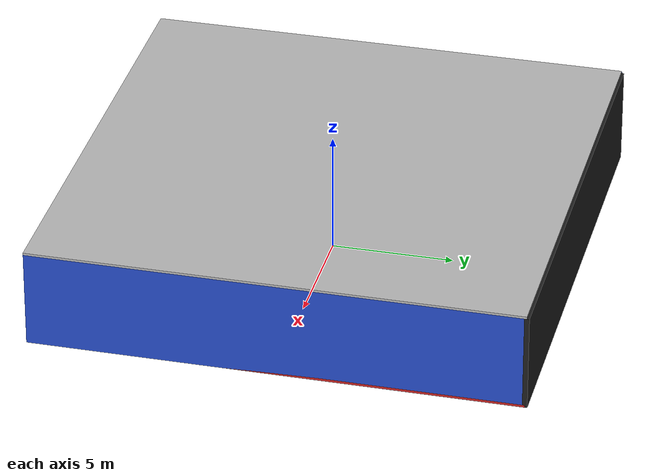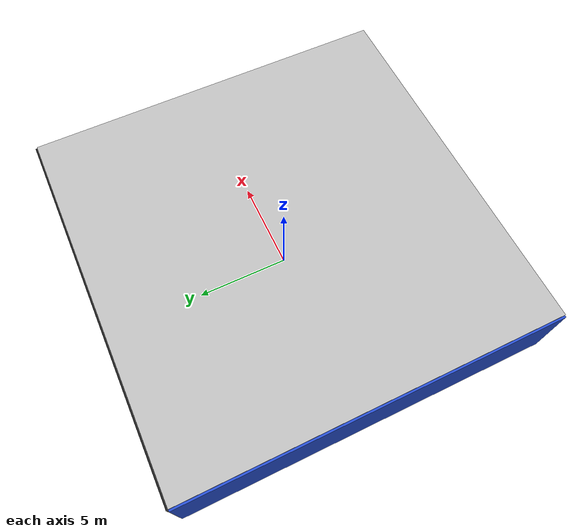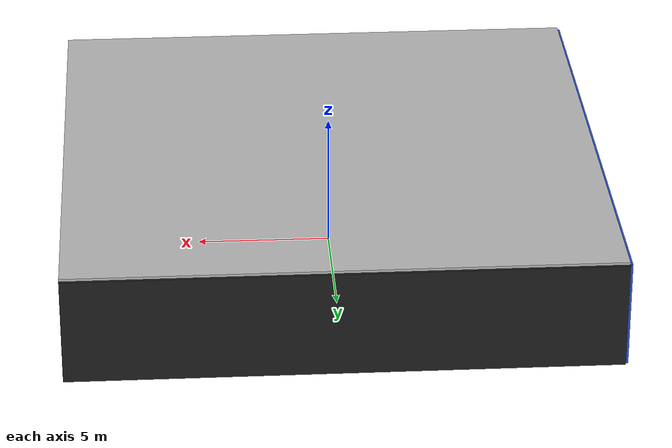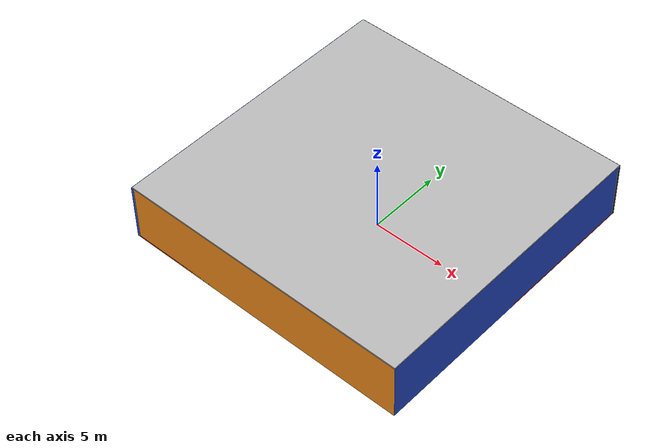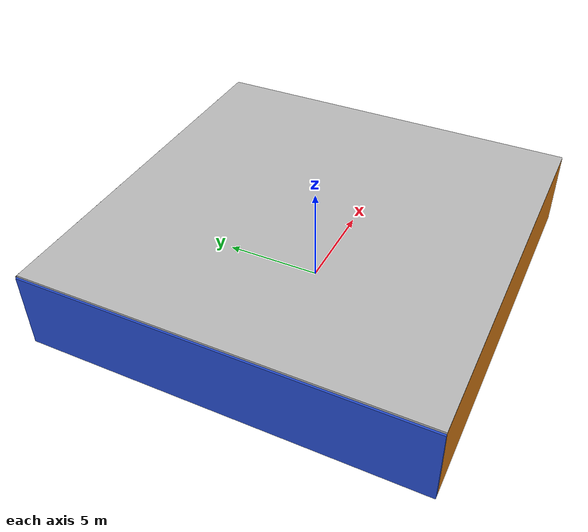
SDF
<sdf version="1.4">
 <world name="default">
  <physics type="ode">
   <max_step_size>0.001</max_step_size>
   <real_time_factor>1</real_time_factor>
   <real_time_update_rate>1000</real_time_update_rate>
   <gravity>0 0 -9.8</gravity>
  </physics>
  <scene><ambient>0.4 0.4 0.4 1</ambient><background>0.7 0.7 0.7 1</background><shadows>1</shadows></scene>
  <model name="Surrounding">
   <static>1</static>
   <link name="Ceiling">
    <collision name="Ceiling_Collision"><geometry><box><size>20 20 0.1</size></box></geometry></collision>
    <visual name="Ceiling_Visual">
     <geometry><box><size>20 20 0.1</size></box></geometry>
     <material>
      <script><uri>file://media/materials/scripts/gazebo.material</uri><name>Gazebo/CloudySky</name></script>
     </material>
    </visual>
    <pose>0 0 4.05 0 0 0</pose>
   </link>
   <link name="Wall_South">
    <collision name="Wall_South_Collision">
     <geometry><box><size>20 0 4</size></box></geometry>
     <pose>0 0 2 0 -0 0</pose>
    </collision>
    <visual name="Wall_South_Visual">
     <pose>0 0 2 0 -0 0</pose>
     <geometry><box><size>20 0 4</size></box></geometry>
     <material>
      <script><uri>file://media/materials/scripts/gazebo.material</uri><name>Gazebo/Orange</name></script>
     </material>
    </visual>
    <velocity_decay><linear>0</linear><angular>0</angular></velocity_decay>
    <pose>0 -10 0 0 -0 0</pose>
   </link>
   <link name="Wall_East">
    <collision name="Wall_21_Collision">
     <geometry><box><size>20 0 4</size></box></geometry>
     <pose>0 0 2 0 -0 0</pose>
    </collision>
    <visual name="Wall_21_Visual">
     <pose>0 0 2 0 -0 0</pose>
     <geometry><box><size>20 0 4</size></box></geometry>
     <material>
      <script><uri>file://media/materials/scripts/gazebo.material</uri><name>Gazebo/BlueGlow</name></script>
     </material>
    </visual>
    <velocity_decay><linear>0</linear><angular>0</angular></velocity_decay>
    <pose>10 0 0 0 -0 1.5708</pose>
   </link>
   <link name="Wall_North">
    <collision name="Wall_22_Collision">
     <geometry><box><size>20 0.2 4</size></box></geometry>
     <pose>0 0 2 0 -0 0</pose>
    </collision>
    <visual name="Wall_22_Visual">
     <pose>0 0 2 0 -0 0</pose>
     <geometry><box><size>20 0.2 4</size></box></geometry>
     <material>
      <script><uri>file://media/materials/scripts/gazebo.material</uri><name>Gazebo/Black</name></script>
     </material>
    </visual>
    <velocity_decay><linear>0</linear><angular>0</angular></velocity_decay>
    <pose>0 10 0 0 -0 0</pose>
   </link>
   <link name="Wall_West">
    <collision name="Wall_23_Collision">
     <geometry><box><size>20 0.2 4</size></box></geometry>
     <pose>0 0 2 0 -0 0</pose>
    </collision>
    <visual name="Wall_23_Visual">
     <pose>0 0 2 0 -0 0</pose>
     <geometry><box><size>20 0.2 4</size></box></geometry>
     <material>
      <script><uri>file://media/materials/scripts/gazebo.material</uri><name>Gazebo/Blue</name></script>
     </material>
    </visual>
    <velocity_decay><linear>0</linear><angular>0</angular></velocity_decay>
    <pose>-10 0 0 0 0 -1.5708</pose>
   </link>
   <link name="Ground_link">
    <collision name="collision">
     <pose>0 0 .05 0 -0 0</pose>
     <geometry><box><size>20 20 0.1</size></box></geometry>
    </collision>
    <visual name="visual">
     <pose>0 0 .05 0 -0 0</pose>
     <geometry><box><size>20 20 0.1</size></box></geometry>
     <material>
      <script><uri>file://media/materials/scripts/gazebo.material</uri><name>Gazebo/Red</name></script>
     </material>
    </visual>
   </link>
   <static>1</static>
  </model>
  <spherical_coordinates>
   <surface_model>EARTH_WGS84</surface_model>
   <latitude_deg>0</latitude_deg>
   <longitude_deg>0</longitude_deg>
   <elevation>0</elevation>
   <heading_deg>0</heading_deg>
  </spherical_coordinates>
  <light name="lightball_0" type="diffuse">
   <diffuse>0.8 0.8 0.8 1</diffuse>
   <specular>0.2 0.2 0.2 1</specular>
   <attenuation>
    <range>100</range>
    <constant>0.7</constant>
    <linear>0.01</linear>
    <quadratic>0.001</quadratic>
   </attenuation>
   <direction>-0.5 0.1 -0.9</direction>
   <pose>4.62475014328 -6.81111510993 1.19113192167 0 0 0</pose>
  </light>
  <light name="lightball_1" type="diffuse">
   <diffuse>0.8 0.8 0.8 1</diffuse>
   <specular>0.2 0.2 0.2 1</specular>
   <attenuation>
    <range>100</range>
    <constant>0.7</constant>
    <linear>0.01</linear>
    <quadratic>0.001</quadratic>
   </attenuation>
   <direction>-0.5 0.1 -0.9</direction>
   <pose>7.60587919084 -0.810314871062 1.52505235405 0 0 0</pose>
  </light>
  <light name="lightball_2" type="diffuse">
   <diffuse>0.8 0.8 0.8 1</diffuse>
   <specular>0.2 0.2 0.2 1</specular>
   <attenuation>
    <range>100</range>
    <constant>0.7</constant>
    <linear>0.01</linear>
    <quadratic>0.001</quadratic>
   </attenuation>
   <direction>-0.5 0.1 -0.9</direction>
   <pose>8.64058732428 -3.92528570243 1.85534495026 0 0 0</pose>
  </light>
  <light name="lightball_3" type="diffuse">
   <diffuse>0.8 0.8 0.8 1</diffuse>
   <specular>0.2 0.2 0.2 1</specular>
   <attenuation>
    <range>100</range>
    <constant>0.7</constant>
    <linear>0.01</linear>
    <quadratic>0.001</quadratic>
   </attenuation>
   <direction>-0.5 0.1 -0.9</direction>
   <pose>1.99408673785 -3.18218891425 2.74564066409 0 0 0</pose>
  </light>
  <light name="lightball_4" type="diffuse">
   <diffuse>0.8 0.8 0.8 1</diffuse>
   <specular>0.2 0.2 0.2 1</specular>
   <attenuation>
    <range>100</range>
    <constant>0.7</constant>
    <linear>0.01</linear>
    <quadratic>0.001</quadratic>
   </attenuation>
   <direction>-0.5 0.1 -0.9</direction>
   <pose>6.16467035176 9.66616839055 3.07049547525 0 0 0</pose>
  </light>
  <light name="lightball_5" type="diffuse">
   <diffuse>0.8 0.8 0.8 1</diffuse>
   <specular>0.2 0.2 0.2 1</specular>
   <attenuation>
    <range>100</range>
    <constant>0.7</constant>
    <linear>0.01</linear>
    <quadratic>0.001</quadratic>
   </attenuation>
   <direction>-0.5 0.1 -0.9</direction>
   <pose>-0.871863668523 1.58689645196 0.714545915534 0 0 0</pose>
  </light>
  <light name="lightball_6" type="diffuse">
   <diffuse>0.8 0.8 0.8 1</diffuse>
   <specular>0.2 0.2 0.2 1</specular>
   <attenuation>
    <range>100</range>
    <constant>0.7</constant>
    <linear>0.01</linear>
    <quadratic>0.001</quadratic>
   </attenuation>
   <direction>-0.5 0.1 -0.9</direction>
   <pose>-1.90441001661 5.19330770602 2.96892727241 0 0 0</pose>
  </light>
  <light name="lightball_7" type="diffuse">
   <diffuse>0.8 0.8 0.8 1</diffuse>
   <specular>0.2 0.2 0.2 1</specular>
   <attenuation>
    <range>100</range>
    <constant>0.7</constant>
    <linear>0.01</linear>
    <quadratic>0.001</quadratic>
   </attenuation>
   <direction>-0.5 0.1 -0.9</direction>
   <pose>-2.51006943619 9.53953352818 0.98611813178 0 0 0</pose>
  </light>
  <light name="lightball_8" type="diffuse">
   <diffuse>0.8 0.8 0.8 1</diffuse>
   <specular>0.2 0.2 0.2 1</specular>
   <attenuation>
    <range>100</range>
    <constant>0.7</constant>
    <linear>0.01</linear>
    <quadratic>0.001</quadratic>
   </attenuation>
   <direction>-0.5 0.1 -0.9</direction>
   <pose>4.36356711232 -0.925982830221 2.50817243188 0 0 0</pose>
  </light>
  <light name="lightball_9" type="diffuse">
   <diffuse>0.8 0.8 0.8 1</diffuse>
   <specular>0.2 0.2 0.2 1</specular>
   <attenuation>
    <range>100</range>
    <constant>0.7</constant>
    <linear>0.01</linear>
    <quadratic>0.001</quadratic>
   </attenuation>
   <direction>-0.5 0.1 -0.9</direction>
   <pose>-8.61751455842 -8.02866958652 1.21929274116 0 0 0</pose>
  </light>
  <light name="lightball_10" type="diffuse">
   <diffuse>0.8 0.8 0.8 1</diffuse>
   <specular>0.2 0.2 0.2 1</specular>
   <attenuation>
    <range>100</range>
    <constant>0.7</constant>
    <linear>0.01</linear>
    <quadratic>0.001</quadratic>
   </attenuation>
   <direction>-0.5 0.1 -0.9</direction>
   <pose>2.38200335285 9.44638317314 0.608949808236 0 0 0</pose>
  </light>
  <light name="lightball_11" type="diffuse">
   <diffuse>0.8 0.8 0.8 1</diffuse>
   <specular>0.2 0.2 0.2 1</specular>
   <attenuation>
    <range>100</range>
    <constant>0.7</constant>
    <linear>0.01</linear>
    <quadratic>0.001</quadratic>
   </attenuation>
   <direction>-0.5 0.1 -0.9</direction>
   <pose>-2.88387641682 6.96072381859 0.641978918028 0 0 0</pose>
  </light>
  <light name="lightball_12" type="diffuse">
   <diffuse>0.8 0.8 0.8 1</diffuse>
   <specular>0.2 0.2 0.2 1</specular>
   <attenuation>
    <range>100</range>
    <constant>0.7</constant>
    <linear>0.01</linear>
    <quadratic>0.001</quadratic>
   </attenuation>
   <direction>-0.5 0.1 -0.9</direction>
   <pose>1.16029969098 0.65741517676 1.48237275047 0 0 0</pose>
  </light>
  <light name="lightball_13" type="diffuse">
   <diffuse>0.8 0.8 0.8 1</diffuse>
   <specular>0.2 0.2 0.2 1</specular>
   <attenuation>
    <range>100</range>
    <constant>0.7</constant>
    <linear>0.01</linear>
    <quadratic>0.001</quadratic>
   </attenuation>
   <direction>-0.5 0.1 -0.9</direction>
   <pose>5.65367587208 2.0879625191 3.48817421821 0 0 0</pose>
  </light>
  <include><uri>model://table</uri><pose>-8.0565993469 -4.88920296594 0 0 0 3.08868351998</pose></include>
  <include>
   <uri>model://textured_shapes</uri>
   <pose>-7.97299224763 3.97478728343 0 0 0 0.496841623577</pose>
  </include>
  <include><uri>model://table</uri><pose>-4.86920666707 -7.82631228533 0 0 0 0.109805743069</pose></include>
  <include><uri>model://table</uri><pose>1.92750709772 -5.08177947237 0 0 0 1.1276558453</pose></include>
  <include><uri>model://cabinet</uri><pose>4.571314652 -7.73245847416 0 0 0 0.232650985574</pose></include>
  <include>
   <uri>model://robocup_3Dsim_goal</uri>
   <pose>4.96746624135 7.49841559269 0 0 0 1.32695220955</pose>
  </include>
  <include><uri>model://cabinet</uri><pose>7.69769536172 7.13844992113 0 0 0 0.346105466349</pose></include>
 </world>
</sdf>

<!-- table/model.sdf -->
<sdf version="1.5">
  <model name="table">
    <static>true</static>
    <link name="link">
      <collision name="surface">
        <pose>0 0 1.0 0 0 0</pose>
        <geometry>
          <box>
            <size>1.5 0.8 0.03</size>
          </box>
        </geometry>
        <surface>
          <friction>
            <ode>
              <mu>0.6</mu>
              <mu2>0.6</mu2>
            </ode>
          </friction>
        </surface>
      </collision>
      <visual name="visual1">
        <pose>0 0 1.0 0 0 0</pose>
        <geometry>
          <box>
            <size>1.5 0.8 0.03</size>
          </box>
        </geometry>
        <material>
          <script>
            <uri>model://media/materials/scripts/gazebo.material</uri>
            <name>Gazebo/Wood</name>
          </script>
        </material>
      </visual>
      <collision name="front_left_leg">
        <pose>0.68 0.38 0.5 0 0 0</pose>
        <geometry>
          <cylinder>
            <radius>0.02</radius>
            <length>1.0</length>
          </cylinder>
        </geometry>
      </collision>
      <visual name="front_left_leg">
        <pose>0.68 0.38 0.5 0 0 0</pose>
        <geometry>
          <cylinder>
            <radius>0.02</radius>
            <length>1.0</length>
          </cylinder>
        </geometry>
        <material>
          <script>
            <uri>model://media/materials/scripts/gazebo.material</uri>
            <name>Gazebo/Grey</name>
          </script>
        </material>
      </visual>
      <collision name="front_right_leg">
        <pose>0.68 -0.38 0.5 0 0 0</pose>
        <geometry>
          <cylinder>
            <radius>0.02</radius>
            <length>1.0</length>
          </cylinder>
        </geometry>
      </collision>
      <visual name="front_right_leg">
        <pose>0.68 -0.38 0.5 0 0 0</pose>
        <geometry>
          <cylinder>
            <radius>0.02</radius>
            <length>1.0</length>
          </cylinder>
        </geometry>
        <material>
          <script>
            <uri>model://media/materials/scripts/gazebo.material</uri>
            <name>Gazebo/Grey</name>
          </script>
        </material>
      </visual>
      <collision name="back_right_leg">
        <pose>-0.68 -0.38 0.5 0 0 0</pose>
        <geometry>
          <cylinder>
            <radius>0.02</radius>
            <length>1.0</length>
          </cylinder>
        </geometry>
      </collision>
      <visual name="back_right_leg">
        <pose>-0.68 -0.38 0.5 0 0 0</pose>
        <geometry>
          <cylinder>
            <radius>0.02</radius>
            <length>1.0</length>
          </cylinder>
        </geometry>
        <material>
          <script>
            <uri>model://media/materials/scripts/gazebo.material</uri>
            <name>Gazebo/Grey</name>
          </script>
        </material>
      </visual>
      <collision name="back_left_leg">
        <pose>-0.68 0.38 0.5 0 0 0</pose>
        <geometry>
          <cylinder>
            <radius>0.02</radius>
            <length>1.0</length>
          </cylinder>
        </geometry>
      </collision>
      <visual name="back_left_leg">
        <pose>-0.68 0.38 0.5 0 0 0</pose>
        <geometry>
          <cylinder>
            <radius>0.02</radius>
            <length>1.0</length>
          </cylinder>
        </geometry>
        <material>
          <script>
            <uri>model://media/materials/scripts/gazebo.material</uri>
            <name>Gazebo/Grey</name>
          </script>
        </material>
      </visual>
    </link>
  </model>
</sdf>

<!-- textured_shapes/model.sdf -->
<sdf version="1.6">
  <model name="textured_shapes">
    <pose>0 0 0.5 0 0 0</pose>
    <link name="box">
      <pose>0 -1.5 0 0 0 0</pose>
      <collision name="collision">
        <geometry>
          <box>
            <size>1 1 1</size>
          </box>
        </geometry>
      </collision>
      <visual name="visual">
        <geometry>
          <box>
            <size>1 1 1</size>
          </box>
        </geometry>
        <material>
          <script>
            <uri>model://../model_source/models/textured_shapes/materials/scripts</uri>
            <uri>model://../model_source/models/textured_shapes/materials/textures</uri>
            <name>TexturedShape/Squares</name>
          </script>
        </material>
      </visual>
    </link>
    <link name="sphere">
      <collision name="collision">
        <geometry>
          <sphere>
            <radius>0.5</radius>
          </sphere>
        </geometry>
      </collision>
      <visual name="visual">
        <geometry>
          <sphere>
            <radius>0.5</radius>
          </sphere>
        </geometry>
        <material>
          <script>
            <uri>model://../model_source/models/textured_shapes/materials/scripts</uri>
            <uri>model://../model_source/models/textured_shapes/materials/textures</uri>
            <name>TexturedShape/Squares</name>
          </script>
        </material>
      </visual>
    </link>
    <link name="cylinder">
      <pose>0 1.5 0 0 0 0</pose>
      <collision name="collision">
        <geometry>
          <cylinder>
            <radius>0.5</radius>
            <length>1</length>
          </cylinder>
        </geometry>
      </collision>
      <visual name="visual">
        <geometry>
          <cylinder>
            <radius>0.5</radius>
            <length>1</length>
          </cylinder>
        </geometry>
        <material>
          <script>
            <uri>model://../model_source/models/textured_shapes/materials/scripts</uri>
            <uri>model://../model_source/models/textured_shapes/materials/textures</uri>
            <name>TexturedShape/Squares</name>
          </script>
        </material>
      </visual>
    </link>
  </model>
</sdf>

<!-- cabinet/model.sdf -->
<sdf version="1.5">
  <model name="cabinet">
    <static>true</static>
    <link name="cabinet_bottom_plate">
      <inertial>
        <pose>0 0 -1 0 0 0</pose>
        <inertia>
          <ixx>2.050000</ixx>
          <ixy>0</ixy>
          <ixz>0</ixz>
          <iyy>2.050000</iyy>
          <iyz>0</iyz>
          <izz>2.050000</izz>
        </inertia>
        <mass>25.000000</mass>
      </inertial>
      <collision name="cabinet_bottom_plate_geom">
        <pose>0 0 0.010000 0 0 0</pose>
        <geometry>
          <box>
            <size>0.450000 0.450000 0.020000</size>
          </box>
        </geometry>
      </collision>
      <visual name="cabinet_bottom_plate_geom_visual">
        <pose>0 0 0.010000 0 0 0</pose>
        <geometry>
          <box>
            <size>0.450000 0.450000 0.020000</size>
          </box>
        </geometry>
        <material>
          <script>
            <uri>model://media/materials/scripts/gazebo.material</uri>
            <name>Gazebo/Wood</name>
          </script>
        </material>
      </visual>
      <collision name="cabinet_bottom_plate_geom_cabinet_back_plate">
        <pose>0.235000 0 0.510000 0 0 0</pose>
        <geometry>
          <box>
            <size>0.020000 0.450000 1.020000</size>
          </box>
        </geometry>
      </collision>
      <visual name="cabinet_bottom_plate_geom_cabinet_back_plate_visual">
        <pose>0.235000 0 0.510000 0 0 0</pose>
        <geometry>
          <box>
            <size>0.020000 0.450000 1.020000</size>
          </box>
        </geometry>
        <material>
          <script>
            <uri>model://media/materials/scripts/gazebo.material</uri>
            <name>Gazebo/Wood</name>
          </script>
        </material>
      </visual>
      <collision name="cabinet_bottom_plate_geom_cabinet_left_plate">
        <pose>0 0.235000 0.510000 0 0 0</pose>
        <geometry>
          <box>
            <size>0.450000 0.020000 1.020000</size>
          </box>
        </geometry>
      </collision>
      <visual name="cabinet_bottom_plate_geom_cabinet_left_plate_visual">
        <pose>0 0.235000 0.510000 0 0 0</pose>
        <geometry>
          <box>
            <size>0.450000 0.020000 1.020000</size>
          </box>
        </geometry>
        <material>
          <script>
            <uri>model://media/materials/scripts/gazebo.material</uri>
            <name>Gazebo/Wood</name>
          </script>
        </material>
      </visual>
      <collision name="cabinet_bottom_plate_geom_cabinet_middle_plate">
        <pose>0 0 0.510000 0 0 0</pose>
        <geometry>
          <box>
            <size>0.450000 0.450000 0.020000</size>
          </box>
        </geometry>
      </collision>
      <visual name="cabinet_bottom_plate_geom_cabinet_middle_plate_visual">
        <pose>0 0 0.510000 0 0 0</pose>
        <geometry>
          <box>
            <size>0.450000 0.450000 0.020000</size>
          </box>
        </geometry>
        <material>
          <script>
            <uri>model://media/materials/scripts/gazebo.material</uri>
            <name>Gazebo/Wood</name>
          </script>
        </material>
      </visual>
      <collision name="cabinet_bottom_plate_geom_cabinet_right_plate">
        <pose>0 -0.235000 0.510000 0 0 0</pose>
        <geometry>
          <box>
            <size>0.450000 0.020000 1.020000</size>
          </box>
        </geometry>
      </collision>
      <visual name="cabinet_bottom_plate_geom_cabinet_right_plate_visual">
        <pose>0 -0.235000 0.510000 0 0 0</pose>
        <geometry>
          <box>
            <size>0.450000 0.020000 1.020000</size>
          </box>
        </geometry>
        <material>
          <script>
            <uri>model://media/materials/scripts/gazebo.material</uri>
            <name>Gazebo/Wood</name>
          </script>
        </material>
      </visual>
      <collision name="cabinet_bottom_plate_geom_cabinet_top_plate">
        <pose>0 0 1.010000 0 0 0</pose>
        <geometry>
          <box>
            <size>0.450000 0.450000 0.020000</size>
          </box>
        </geometry>
      </collision>
      <visual name="cabinet_bottom_plate_geom_cabinet_top_plate_visual">
        <pose>0 0 1.010000 0 0 0</pose>
        <geometry>
          <box>
            <size>0.450000 0.450000 0.020000</size>
          </box>
        </geometry>
        <material>
          <script>
            <uri>model://media/materials/scripts/gazebo.material</uri>
            <name>Gazebo/Wood</name>
          </script>
        </material>
      </visual>
    </link>
  </model>
</sdf>

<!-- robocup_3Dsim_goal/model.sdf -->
<sdf version="1.5">
  <model name="robocup_3d_goal">
    <static>true</static>
    <link name="left_post">
      <pose>0 1.05 0.45 0 0 0</pose>
      <collision name="collision">
        <geometry>
          <cylinder>
            <radius>0.05</radius>
            <length>0.9</length>
          </cylinder>
        </geometry>
      </collision>
      <visual name="visual">
        <geometry>
          <cylinder>
            <radius>0.05</radius>
            <length>0.9</length>
          </cylinder>
        </geometry>
        <material>
          <script>
            <uri>file://media/materials/scripts/gazebo.material</uri>
            <name>Gazebo/ZincYellow</name>
          </script>
        </material>
      </visual>
    </link>
    <link name="left_support_horiz_lower">
      <pose>0.30 1.05 0.01 0 0 0</pose>
      <collision name="collision">
        <geometry>
          <box>
            <size>0.50 0.02 0.02</size>
          </box>
        </geometry>
      </collision>
      <visual name="visual">
        <geometry>
          <box>
            <size>0.50 0.02 0.02</size>
          </box>
        </geometry>
        <material>
          <script>
            <uri>file://media/materials/scripts/gazebo.material</uri>
            <name>Gazebo/White</name>
          </script>
        </material>
      </visual>
    </link>
    <link name="left_support_horiz_upper">
      <pose>0.30 1.05 0.79 0 0 0</pose>
      <collision name="collision">
        <geometry>
          <box>
            <size>0.50 0.02 0.02</size>
          </box>
        </geometry>
      </collision>
      <visual name="visual">
        <geometry>
          <box>
            <size>0.50 0.02 0.02</size>
          </box>
        </geometry>
        <material>
          <script>
            <uri>file://media/materials/scripts/gazebo.material</uri>
            <name>Gazebo/White</name>
          </script>
        </material>
      </visual>
    </link>
    <link name="left_support_vertical">
      <pose>0.56 1.05 0.4 0 1.5708 0</pose>
      <collision name="collision">
        <geometry>
          <box>
            <size>0.80 0.02 0.02</size>
          </box>
        </geometry>
      </collision>
      <visual name="visual">
        <geometry>
          <box>
            <size>0.80 0.02 0.02</size>
          </box>
        </geometry>
        <material>
          <script>
            <uri>file://media/materials/scripts/gazebo.material</uri>
            <name>Gazebo/White</name>
          </script>
        </material>
      </visual>
    </link>
    <link name="right_support_horiz_lower">
      <pose>0.30 -1.05 0.01 0 0 0</pose>
      <collision name="collision">
        <geometry>
          <box>
            <size>0.50 0.02 0.02</size>
          </box>
        </geometry>
      </collision>
      <visual name="visual">
        <geometry>
          <box>
            <size>0.50 0.02 0.02</size>
          </box>
        </geometry>
        <material>
          <script>
            <uri>file://media/materials/scripts/gazebo.material</uri>
            <name>Gazebo/White</name>
          </script>
        </material>
      </visual>
    </link>
    <link name="right_support_horiz_upper">
      <pose>0.30 -1.05 0.79 0 0 0</pose>
      <collision name="collision">
        <geometry>
          <box>
            <size>0.50 0.02 0.02</size>
          </box>
        </geometry>
      </collision>
      <visual name="visual">
        <geometry>
          <box>
            <size>0.50 0.02 0.02</size>
          </box>
        </geometry>
        <material>
          <script>
            <uri>file://media/materials/scripts/gazebo.material</uri>
            <name>Gazebo/White</name>
          </script>
        </material>
      </visual>
    </link>
    <link name="right_support_vertical">
      <pose>0.56 -1.05 0.4 0 1.5708 0</pose>
      <collision name="collision">
        <geometry>
          <box>
            <size>0.80 0.02 0.02</size>
          </box>
        </geometry>
      </collision>
      <visual name="visual">
        <geometry>
          <box>
            <size>0.80 0.02 0.02</size>
          </box>
        </geometry>
        <material>
          <script>
            <uri>file://media/materials/scripts/gazebo.material</uri>
            <name>Gazebo/White</name>
          </script>
        </material>
      </visual>
    </link>
    <link name="center_support_horiz_lower">
      <pose>0.56 0 0.01 0 1.5708 0</pose>
      <collision name="collision">
        <geometry>
          <box>
            <size>0.02 2.08 0.02</size>
          </box>
        </geometry>
      </collision>
      <visual name="visual">
        <geometry>
          <box>
            <size>0.02 2.08 0.02</size>
          </box>
        </geometry>
        <material>
          <script>
            <uri>file://media/materials/scripts/gazebo.material</uri>
            <name>Gazebo/White</name>
          </script>
        </material>
      </visual>
    </link>
    <link name="center_support_horiz_upper">
      <pose>0.56 0 0.79 0 1.5708 0</pose>
      <collision name="collision">
        <geometry>
          <box>
            <size>0.02 2.08 0.02</size>
          </box>
        </geometry>
      </collision>
      <visual name="visual">
        <geometry>
          <box>
            <size>0.02 2.08 0.02</size>
          </box>
        </geometry>
        <material>
          <script>
            <uri>file://media/materials/scripts/gazebo.material</uri>
            <name>Gazebo/White</name>
          </script>
        </material>
      </visual>
    </link>
    <link name="right_post">
      <pose>0 -1.05 0.45 0 0 0</pose>
      <collision name="collision">
        <geometry>
          <cylinder>
            <radius>0.05</radius>
            <length>0.9</length>
          </cylinder>
        </geometry>
      </collision>
      <visual name="visual">
        <geometry>
          <cylinder>
            <radius>0.05</radius>
            <length>0.9</length>
          </cylinder>
        </geometry>
        <material>
          <script>
            <uri>file://media/materials/scripts/gazebo.material</uri>
            <name>Gazebo/ZincYellow</name>
          </script>
        </material>
      </visual>
    </link>
    <link name="crossbar">
      <pose>0 0 0.85 1.57 1.57 0</pose>
      <collision name="collision">
        <geometry>
          <cylinder>
            <radius>0.05</radius>
            <length>2.0</length>
          </cylinder>
        </geometry>
      </collision>
      <visual name="visual">
        <geometry>
          <cylinder>
            <radius>0.05</radius>
            <length>2.0</length>
          </cylinder>
        </geometry>
        <material>
          <script>
            <uri>file://media/materials/scripts/gazebo.material</uri>
            <name>Gazebo/ZincYellow</name>
          </script>
        </material>
      </visual>
    </link>
    <link name="center_net">
      <pose>0.56 0 0.40 0 0 0</pose>
      <collision name="collision">
        <geometry>
          <box>
            <size>0.01 2.1 0.80</size>
          </box>
        </geometry>
      </collision>
      <visual name="visual">
        <geometry>
          <box>
            <size>0.01 2.1 0.80</size>
          </box>
        </geometry>
        <material>
          <script>
            <uri>model://../model_source/models/robocup09_spl_field/materials/scripts/</uri>
            <uri>model://../model_source/models/robocup09_spl_field/materials/textures/</uri>
            <name>RoboCup/Net</name>
          </script>
        </material>
      </visual>
    </link>
    <link name="left_net">
      <pose>0.30 1.05 0.40 0 0 0</pose>
      <collision name="collision">
        <geometry>
          <box>
            <size>0.50 0.01 0.76</size>
          </box>
        </geometry>
      </collision>
      <visual name="visual">
        <geometry>
          <box>
            <size>0.50 0.01 0.76</size>
          </box>
        </geometry>
        <material>
          <script>
            <uri>model://../model_source/models/robocup09_spl_field/materials/scripts/</uri>
            <uri>model://../model_source/models/robocup09_spl_field/materials/textures/</uri>
            <name>RoboCup/Net</name>
          </script>
        </material>
      </visual>
    </link>
    <link name="right_net">
      <pose>0.30 -1.05 0.40 0 0 0</pose>
      <collision name="collision">
        <geometry>
          <box>
            <size>0.50 0.01 0.76</size>
          </box>
        </geometry>
      </collision>
      <visual name="visual">
        <geometry>
          <box>
            <size>0.50 0.01 0.76</size>
          </box>
        </geometry>
        <material>
          <script>
            <uri>model://../model_source/models/robocup09_spl_field/materials/scripts/</uri>
            <uri>model://../model_source/models/robocup09_spl_field/materials/textures/</uri>
            <name>RoboCup/Net</name>
          </script>
        </material>
      </visual>
    </link>
  </model>
</sdf>
